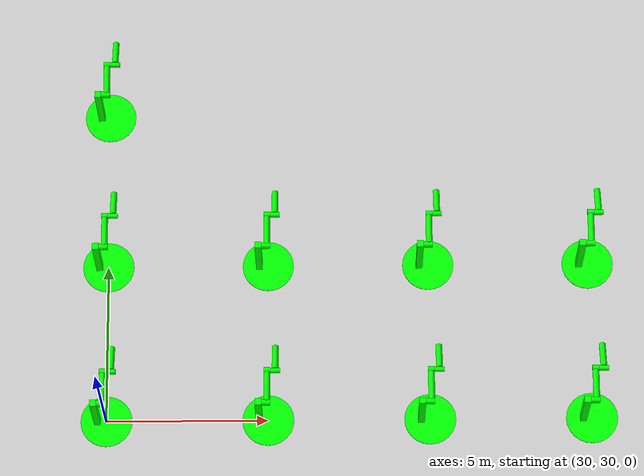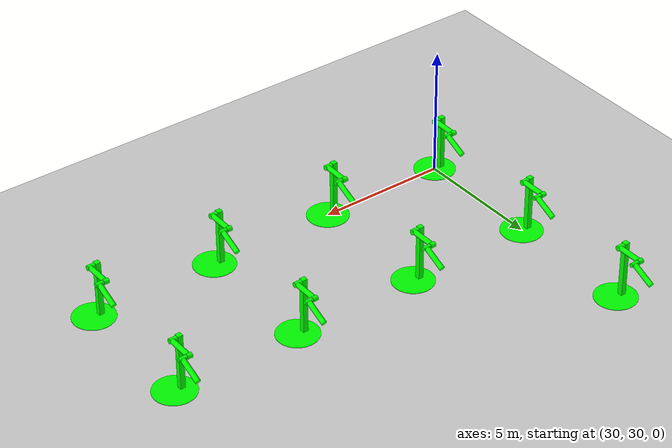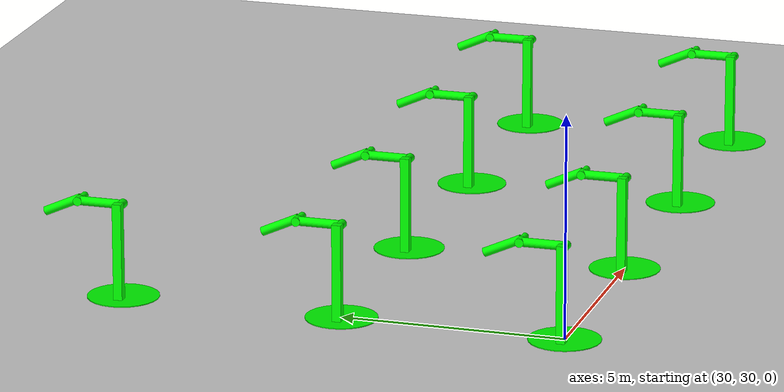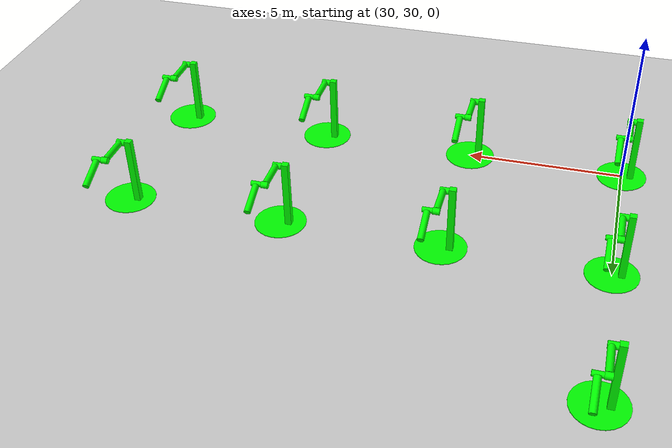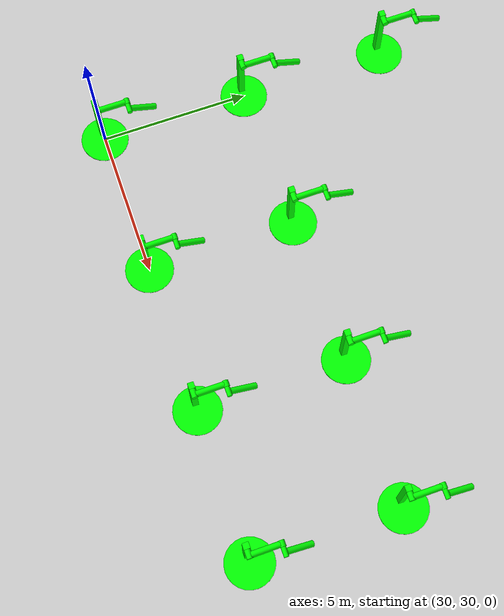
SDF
<sdf version="1.6">
 <world name="double_pendulums">
  <model name="ground_plane">
   <static>true</static>
   <link name="link">
    <collision name="collision">
     <geometry><plane><normal>0 0 1</normal><size>100 100</size></plane></geometry>
    </collision>
    <visual name="visual">
     <geometry><plane><normal>0 0 1</normal><size>100 100</size></plane></geometry>
     <material>
      <ambient>0.8 0.8 0.8 1</ambient>
      <diffuse>0.8 0.8 0.8 1</diffuse>
      <specular>0.8 0.8 0.8 1</specular>
     </material>
    </visual>
   </link>
  </model>
  <model name="dbl_pendulum_166">
   <pose>30 30 0 0 0 0</pose>
   <link name="base">
    <inertial><mass>100</mass></inertial>
    <visual name="vis_plate_on_ground">
     <pose>0 0 0.01 0 0 0</pose>
     <geometry><cylinder><radius>0.8</radius><length>0.02</length></cylinder></geometry>
     <material><ambient>0 1 0 1</ambient><diffuse>0 1 0 1</diffuse><specular>0 1 0 1</specular></material>
    </visual>
    <visual name="vis_pole">
     <pose>-0.275 0 1.1 0 0 0</pose>
     <geometry><box><size>0.2 0.2 2.2</size></box></geometry>
     <material><ambient>0 1 0 1</ambient><diffuse>0 1 0 1</diffuse><specular>0 1 0 1</specular></material>
    </visual>
    <collision name="col_plate_on_ground">
     <pose>0 0 0.01 0 0 0</pose>
     <geometry><cylinder><radius>0.8</radius><length>0.02</length></cylinder></geometry>
    </collision>
    <collision name="col_pole">
     <pose>-0.275 0 1.1 0 0 0</pose>
     <geometry><box><size>0.2 0.2 2.2</size></box></geometry>
    </collision>
   </link>
   <link name="upper_link">
    <pose>0 0 2.1 -1.5708 0 0</pose>
    <inertial><pose>0 0 0.5 0 0 0</pose></inertial>
    <visual name="vis_upper_joint">
     <pose>-0.05 0 0 0 1.5708 0</pose>
     <geometry><cylinder><radius>0.1</radius><length>0.3</length></cylinder></geometry>
     <material><ambient>0 1 0 1</ambient><diffuse>0 1 0 1</diffuse><specular>0 1 0 1</specular></material>
    </visual>
    <visual name="vis_lower_joint">
     <pose>0 0 1.0 0 1.5708 0</pose>
     <geometry><cylinder><radius>0.1</radius><length>0.2</length></cylinder></geometry>
     <material><ambient>0 1 0 1</ambient><diffuse>0 1 0 1</diffuse><specular>0 1 0 1</specular></material>
    </visual>
    <visual name="vis_cylinder">
     <pose>0 0 0.5 0 0 0</pose>
     <geometry><cylinder><radius>0.1</radius><length>0.9</length></cylinder></geometry>
     <material><ambient>0 1 0 1</ambient><diffuse>0 1 0 1</diffuse><specular>0 1 0 1</specular></material>
    </visual>
    <collision name="col_upper_joint">
     <pose>-0.05 0 0 0 1.5708 0</pose>
     <geometry><cylinder><radius>0.1</radius><length>0.3</length></cylinder></geometry>
    </collision>
    <collision name="col_lower_joint">
     <pose>0 0 1.0 0 1.5708 0</pose>
     <geometry><cylinder><radius>0.1</radius><length>0.2</length></cylinder></geometry>
    </collision>
    <collision name="col_cylinder">
     <pose>0 0 0.5 0 0 0</pose>
     <geometry><cylinder><radius>0.1</radius><length>0.9</length></cylinder></geometry>
    </collision>
   </link>
   <link name="lower_link">
    <pose>0.25 1.0 2.1 -2 0 0</pose>
    <inertial><pose>0 0 0.5 0 0 0</pose></inertial>
    <visual name="vis_lower_joint">
     <pose>0 0 0 0 1.5708 0</pose>
     <geometry><cylinder><radius>0.08</radius><length>0.3</length></cylinder></geometry>
     <material><ambient>0 1 0 1</ambient><diffuse>0 1 0 1</diffuse><specular>0 1 0 1</specular></material>
    </visual>
    <visual name="vis_cylinder">
     <pose>0 0 0.5 0 0 0</pose>
     <geometry><cylinder><radius>0.1</radius><length>0.9</length></cylinder></geometry>
     <material><ambient>0 1 0 1</ambient><diffuse>0 1 0 1</diffuse><specular>0 1 0 1</specular></material>
    </visual>
    <collision name="col_lower_joint">
     <pose>0 0 0 0 1.5708 0</pose>
     <geometry><cylinder><radius>0.08</radius><length>0.3</length></cylinder></geometry>
    </collision>
    <collision name="col_cylinder">
     <pose>0 0 0.5 0 0 0</pose>
     <geometry><cylinder><radius>0.1</radius><length>0.9</length></cylinder></geometry>
    </collision>
   </link>
   <joint name="upper_joint" type="revolute">
    <parent>base</parent>
    <child>upper_link</child>
    <axis><xyz>1.0 0 0</xyz></axis>
   </joint>
   <joint name="lower_joint" type="revolute">
    <parent>upper_link</parent>
    <child>lower_link</child>
    <axis><xyz>1.0 0 0</xyz></axis>
   </joint>
  </model>
  <model name="dbl_pendulum_167">
   <pose>35 30 0 0 0 0</pose>
   <link name="base">
    <inertial><mass>100</mass></inertial>
    <visual name="vis_plate_on_ground">
     <pose>0 0 0.01 0 0 0</pose>
     <geometry><cylinder><radius>0.8</radius><length>0.02</length></cylinder></geometry>
     <material><ambient>0 1 0 1</ambient><diffuse>0 1 0 1</diffuse><specular>0 1 0 1</specular></material>
    </visual>
    <visual name="vis_pole">
     <pose>-0.275 0 1.1 0 0 0</pose>
     <geometry><box><size>0.2 0.2 2.2</size></box></geometry>
     <material><ambient>0 1 0 1</ambient><diffuse>0 1 0 1</diffuse><specular>0 1 0 1</specular></material>
    </visual>
    <collision name="col_plate_on_ground">
     <pose>0 0 0.01 0 0 0</pose>
     <geometry><cylinder><radius>0.8</radius><length>0.02</length></cylinder></geometry>
    </collision>
    <collision name="col_pole">
     <pose>-0.275 0 1.1 0 0 0</pose>
     <geometry><box><size>0.2 0.2 2.2</size></box></geometry>
    </collision>
   </link>
   <link name="upper_link">
    <pose>0 0 2.1 -1.5708 0 0</pose>
    <inertial><pose>0 0 0.5 0 0 0</pose></inertial>
    <visual name="vis_upper_joint">
     <pose>-0.05 0 0 0 1.5708 0</pose>
     <geometry><cylinder><radius>0.1</radius><length>0.3</length></cylinder></geometry>
     <material><ambient>0 1 0 1</ambient><diffuse>0 1 0 1</diffuse><specular>0 1 0 1</specular></material>
    </visual>
    <visual name="vis_lower_joint">
     <pose>0 0 1.0 0 1.5708 0</pose>
     <geometry><cylinder><radius>0.1</radius><length>0.2</length></cylinder></geometry>
     <material><ambient>0 1 0 1</ambient><diffuse>0 1 0 1</diffuse><specular>0 1 0 1</specular></material>
    </visual>
    <visual name="vis_cylinder">
     <pose>0 0 0.5 0 0 0</pose>
     <geometry><cylinder><radius>0.1</radius><length>0.9</length></cylinder></geometry>
     <material><ambient>0 1 0 1</ambient><diffuse>0 1 0 1</diffuse><specular>0 1 0 1</specular></material>
    </visual>
    <collision name="col_upper_joint">
     <pose>-0.05 0 0 0 1.5708 0</pose>
     <geometry><cylinder><radius>0.1</radius><length>0.3</length></cylinder></geometry>
    </collision>
    <collision name="col_lower_joint">
     <pose>0 0 1.0 0 1.5708 0</pose>
     <geometry><cylinder><radius>0.1</radius><length>0.2</length></cylinder></geometry>
    </collision>
    <collision name="col_cylinder">
     <pose>0 0 0.5 0 0 0</pose>
     <geometry><cylinder><radius>0.1</radius><length>0.9</length></cylinder></geometry>
    </collision>
   </link>
   <link name="lower_link">
    <pose>0.25 1.0 2.1 -2 0 0</pose>
    <inertial><pose>0 0 0.5 0 0 0</pose></inertial>
    <visual name="vis_lower_joint">
     <pose>0 0 0 0 1.5708 0</pose>
     <geometry><cylinder><radius>0.08</radius><length>0.3</length></cylinder></geometry>
     <material><ambient>0 1 0 1</ambient><diffuse>0 1 0 1</diffuse><specular>0 1 0 1</specular></material>
    </visual>
    <visual name="vis_cylinder">
     <pose>0 0 0.5 0 0 0</pose>
     <geometry><cylinder><radius>0.1</radius><length>0.9</length></cylinder></geometry>
     <material><ambient>0 1 0 1</ambient><diffuse>0 1 0 1</diffuse><specular>0 1 0 1</specular></material>
    </visual>
    <collision name="col_lower_joint">
     <pose>0 0 0 0 1.5708 0</pose>
     <geometry><cylinder><radius>0.08</radius><length>0.3</length></cylinder></geometry>
    </collision>
    <collision name="col_cylinder">
     <pose>0 0 0.5 0 0 0</pose>
     <geometry><cylinder><radius>0.1</radius><length>0.9</length></cylinder></geometry>
    </collision>
   </link>
   <joint name="upper_joint" type="revolute">
    <parent>base</parent>
    <child>upper_link</child>
    <axis><xyz>1.0 0 0</xyz></axis>
   </joint>
   <joint name="lower_joint" type="revolute">
    <parent>upper_link</parent>
    <child>lower_link</child>
    <axis><xyz>1.0 0 0</xyz></axis>
   </joint>
  </model>
  <model name="dbl_pendulum_168">
   <pose>40 30 0 0 0 0</pose>
   <link name="base">
    <inertial><mass>100</mass></inertial>
    <visual name="vis_plate_on_ground">
     <pose>0 0 0.01 0 0 0</pose>
     <geometry><cylinder><radius>0.8</radius><length>0.02</length></cylinder></geometry>
     <material><ambient>0 1 0 1</ambient><diffuse>0 1 0 1</diffuse><specular>0 1 0 1</specular></material>
    </visual>
    <visual name="vis_pole">
     <pose>-0.275 0 1.1 0 0 0</pose>
     <geometry><box><size>0.2 0.2 2.2</size></box></geometry>
     <material><ambient>0 1 0 1</ambient><diffuse>0 1 0 1</diffuse><specular>0 1 0 1</specular></material>
    </visual>
    <collision name="col_plate_on_ground">
     <pose>0 0 0.01 0 0 0</pose>
     <geometry><cylinder><radius>0.8</radius><length>0.02</length></cylinder></geometry>
    </collision>
    <collision name="col_pole">
     <pose>-0.275 0 1.1 0 0 0</pose>
     <geometry><box><size>0.2 0.2 2.2</size></box></geometry>
    </collision>
   </link>
   <link name="upper_link">
    <pose>0 0 2.1 -1.5708 0 0</pose>
    <inertial><pose>0 0 0.5 0 0 0</pose></inertial>
    <visual name="vis_upper_joint">
     <pose>-0.05 0 0 0 1.5708 0</pose>
     <geometry><cylinder><radius>0.1</radius><length>0.3</length></cylinder></geometry>
     <material><ambient>0 1 0 1</ambient><diffuse>0 1 0 1</diffuse><specular>0 1 0 1</specular></material>
    </visual>
    <visual name="vis_lower_joint">
     <pose>0 0 1.0 0 1.5708 0</pose>
     <geometry><cylinder><radius>0.1</radius><length>0.2</length></cylinder></geometry>
     <material><ambient>0 1 0 1</ambient><diffuse>0 1 0 1</diffuse><specular>0 1 0 1</specular></material>
    </visual>
    <visual name="vis_cylinder">
     <pose>0 0 0.5 0 0 0</pose>
     <geometry><cylinder><radius>0.1</radius><length>0.9</length></cylinder></geometry>
     <material><ambient>0 1 0 1</ambient><diffuse>0 1 0 1</diffuse><specular>0 1 0 1</specular></material>
    </visual>
    <collision name="col_upper_joint">
     <pose>-0.05 0 0 0 1.5708 0</pose>
     <geometry><cylinder><radius>0.1</radius><length>0.3</length></cylinder></geometry>
    </collision>
    <collision name="col_lower_joint">
     <pose>0 0 1.0 0 1.5708 0</pose>
     <geometry><cylinder><radius>0.1</radius><length>0.2</length></cylinder></geometry>
    </collision>
    <collision name="col_cylinder">
     <pose>0 0 0.5 0 0 0</pose>
     <geometry><cylinder><radius>0.1</radius><length>0.9</length></cylinder></geometry>
    </collision>
   </link>
   <link name="lower_link">
    <pose>0.25 1.0 2.1 -2 0 0</pose>
    <inertial><pose>0 0 0.5 0 0 0</pose></inertial>
    <visual name="vis_lower_joint">
     <pose>0 0 0 0 1.5708 0</pose>
     <geometry><cylinder><radius>0.08</radius><length>0.3</length></cylinder></geometry>
     <material><ambient>0 1 0 1</ambient><diffuse>0 1 0 1</diffuse><specular>0 1 0 1</specular></material>
    </visual>
    <visual name="vis_cylinder">
     <pose>0 0 0.5 0 0 0</pose>
     <geometry><cylinder><radius>0.1</radius><length>0.9</length></cylinder></geometry>
     <material><ambient>0 1 0 1</ambient><diffuse>0 1 0 1</diffuse><specular>0 1 0 1</specular></material>
    </visual>
    <collision name="col_lower_joint">
     <pose>0 0 0 0 1.5708 0</pose>
     <geometry><cylinder><radius>0.08</radius><length>0.3</length></cylinder></geometry>
    </collision>
    <collision name="col_cylinder">
     <pose>0 0 0.5 0 0 0</pose>
     <geometry><cylinder><radius>0.1</radius><length>0.9</length></cylinder></geometry>
    </collision>
   </link>
   <joint name="upper_joint" type="revolute">
    <parent>base</parent>
    <child>upper_link</child>
    <axis><xyz>1.0 0 0</xyz></axis>
   </joint>
   <joint name="lower_joint" type="revolute">
    <parent>upper_link</parent>
    <child>lower_link</child>
    <axis><xyz>1.0 0 0</xyz></axis>
   </joint>
  </model>
  <model name="dbl_pendulum_169">
   <pose>45 30 0 0 0 0</pose>
   <link name="base">
    <inertial><mass>100</mass></inertial>
    <visual name="vis_plate_on_ground">
     <pose>0 0 0.01 0 0 0</pose>
     <geometry><cylinder><radius>0.8</radius><length>0.02</length></cylinder></geometry>
     <material><ambient>0 1 0 1</ambient><diffuse>0 1 0 1</diffuse><specular>0 1 0 1</specular></material>
    </visual>
    <visual name="vis_pole">
     <pose>-0.275 0 1.1 0 0 0</pose>
     <geometry><box><size>0.2 0.2 2.2</size></box></geometry>
     <material><ambient>0 1 0 1</ambient><diffuse>0 1 0 1</diffuse><specular>0 1 0 1</specular></material>
    </visual>
    <collision name="col_plate_on_ground">
     <pose>0 0 0.01 0 0 0</pose>
     <geometry><cylinder><radius>0.8</radius><length>0.02</length></cylinder></geometry>
    </collision>
    <collision name="col_pole">
     <pose>-0.275 0 1.1 0 0 0</pose>
     <geometry><box><size>0.2 0.2 2.2</size></box></geometry>
    </collision>
   </link>
   <link name="upper_link">
    <pose>0 0 2.1 -1.5708 0 0</pose>
    <inertial><pose>0 0 0.5 0 0 0</pose></inertial>
    <visual name="vis_upper_joint">
     <pose>-0.05 0 0 0 1.5708 0</pose>
     <geometry><cylinder><radius>0.1</radius><length>0.3</length></cylinder></geometry>
     <material><ambient>0 1 0 1</ambient><diffuse>0 1 0 1</diffuse><specular>0 1 0 1</specular></material>
    </visual>
    <visual name="vis_lower_joint">
     <pose>0 0 1.0 0 1.5708 0</pose>
     <geometry><cylinder><radius>0.1</radius><length>0.2</length></cylinder></geometry>
     <material><ambient>0 1 0 1</ambient><diffuse>0 1 0 1</diffuse><specular>0 1 0 1</specular></material>
    </visual>
    <visual name="vis_cylinder">
     <pose>0 0 0.5 0 0 0</pose>
     <geometry><cylinder><radius>0.1</radius><length>0.9</length></cylinder></geometry>
     <material><ambient>0 1 0 1</ambient><diffuse>0 1 0 1</diffuse><specular>0 1 0 1</specular></material>
    </visual>
    <collision name="col_upper_joint">
     <pose>-0.05 0 0 0 1.5708 0</pose>
     <geometry><cylinder><radius>0.1</radius><length>0.3</length></cylinder></geometry>
    </collision>
    <collision name="col_lower_joint">
     <pose>0 0 1.0 0 1.5708 0</pose>
     <geometry><cylinder><radius>0.1</radius><length>0.2</length></cylinder></geometry>
    </collision>
    <collision name="col_cylinder">
     <pose>0 0 0.5 0 0 0</pose>
     <geometry><cylinder><radius>0.1</radius><length>0.9</length></cylinder></geometry>
    </collision>
   </link>
   <link name="lower_link">
    <pose>0.25 1.0 2.1 -2 0 0</pose>
    <inertial><pose>0 0 0.5 0 0 0</pose></inertial>
    <visual name="vis_lower_joint">
     <pose>0 0 0 0 1.5708 0</pose>
     <geometry><cylinder><radius>0.08</radius><length>0.3</length></cylinder></geometry>
     <material><ambient>0 1 0 1</ambient><diffuse>0 1 0 1</diffuse><specular>0 1 0 1</specular></material>
    </visual>
    <visual name="vis_cylinder">
     <pose>0 0 0.5 0 0 0</pose>
     <geometry><cylinder><radius>0.1</radius><length>0.9</length></cylinder></geometry>
     <material><ambient>0 1 0 1</ambient><diffuse>0 1 0 1</diffuse><specular>0 1 0 1</specular></material>
    </visual>
    <collision name="col_lower_joint">
     <pose>0 0 0 0 1.5708 0</pose>
     <geometry><cylinder><radius>0.08</radius><length>0.3</length></cylinder></geometry>
    </collision>
    <collision name="col_cylinder">
     <pose>0 0 0.5 0 0 0</pose>
     <geometry><cylinder><radius>0.1</radius><length>0.9</length></cylinder></geometry>
    </collision>
   </link>
   <joint name="upper_joint" type="revolute">
    <parent>base</parent>
    <child>upper_link</child>
    <axis><xyz>1.0 0 0</xyz></axis>
   </joint>
   <joint name="lower_joint" type="revolute">
    <parent>upper_link</parent>
    <child>lower_link</child>
    <axis><xyz>1.0 0 0</xyz></axis>
   </joint>
  </model>
  <model name="dbl_pendulum_191">
   <pose>30 35 0 0 0 0</pose>
   <link name="base">
    <inertial><mass>100</mass></inertial>
    <visual name="vis_plate_on_ground">
     <pose>0 0 0.01 0 0 0</pose>
     <geometry><cylinder><radius>0.8</radius><length>0.02</length></cylinder></geometry>
     <material><ambient>0 1 0 1</ambient><diffuse>0 1 0 1</diffuse><specular>0 1 0 1</specular></material>
    </visual>
    <visual name="vis_pole">
     <pose>-0.275 0 1.1 0 0 0</pose>
     <geometry><box><size>0.2 0.2 2.2</size></box></geometry>
     <material><ambient>0 1 0 1</ambient><diffuse>0 1 0 1</diffuse><specular>0 1 0 1</specular></material>
    </visual>
    <collision name="col_plate_on_ground">
     <pose>0 0 0.01 0 0 0</pose>
     <geometry><cylinder><radius>0.8</radius><length>0.02</length></cylinder></geometry>
    </collision>
    <collision name="col_pole">
     <pose>-0.275 0 1.1 0 0 0</pose>
     <geometry><box><size>0.2 0.2 2.2</size></box></geometry>
    </collision>
   </link>
   <link name="upper_link">
    <pose>0 0 2.1 -1.5708 0 0</pose>
    <inertial><pose>0 0 0.5 0 0 0</pose></inertial>
    <visual name="vis_upper_joint">
     <pose>-0.05 0 0 0 1.5708 0</pose>
     <geometry><cylinder><radius>0.1</radius><length>0.3</length></cylinder></geometry>
     <material><ambient>0 1 0 1</ambient><diffuse>0 1 0 1</diffuse><specular>0 1 0 1</specular></material>
    </visual>
    <visual name="vis_lower_joint">
     <pose>0 0 1.0 0 1.5708 0</pose>
     <geometry><cylinder><radius>0.1</radius><length>0.2</length></cylinder></geometry>
     <material><ambient>0 1 0 1</ambient><diffuse>0 1 0 1</diffuse><specular>0 1 0 1</specular></material>
    </visual>
    <visual name="vis_cylinder">
     <pose>0 0 0.5 0 0 0</pose>
     <geometry><cylinder><radius>0.1</radius><length>0.9</length></cylinder></geometry>
     <material><ambient>0 1 0 1</ambient><diffuse>0 1 0 1</diffuse><specular>0 1 0 1</specular></material>
    </visual>
    <collision name="col_upper_joint">
     <pose>-0.05 0 0 0 1.5708 0</pose>
     <geometry><cylinder><radius>0.1</radius><length>0.3</length></cylinder></geometry>
    </collision>
    <collision name="col_lower_joint">
     <pose>0 0 1.0 0 1.5708 0</pose>
     <geometry><cylinder><radius>0.1</radius><length>0.2</length></cylinder></geometry>
    </collision>
    <collision name="col_cylinder">
     <pose>0 0 0.5 0 0 0</pose>
     <geometry><cylinder><radius>0.1</radius><length>0.9</length></cylinder></geometry>
    </collision>
   </link>
   <link name="lower_link">
    <pose>0.25 1.0 2.1 -2 0 0</pose>
    <inertial><pose>0 0 0.5 0 0 0</pose></inertial>
    <visual name="vis_lower_joint">
     <pose>0 0 0 0 1.5708 0</pose>
     <geometry><cylinder><radius>0.08</radius><length>0.3</length></cylinder></geometry>
     <material><ambient>0 1 0 1</ambient><diffuse>0 1 0 1</diffuse><specular>0 1 0 1</specular></material>
    </visual>
    <visual name="vis_cylinder">
     <pose>0 0 0.5 0 0 0</pose>
     <geometry><cylinder><radius>0.1</radius><length>0.9</length></cylinder></geometry>
     <material><ambient>0 1 0 1</ambient><diffuse>0 1 0 1</diffuse><specular>0 1 0 1</specular></material>
    </visual>
    <collision name="col_lower_joint">
     <pose>0 0 0 0 1.5708 0</pose>
     <geometry><cylinder><radius>0.08</radius><length>0.3</length></cylinder></geometry>
    </collision>
    <collision name="col_cylinder">
     <pose>0 0 0.5 0 0 0</pose>
     <geometry><cylinder><radius>0.1</radius><length>0.9</length></cylinder></geometry>
    </collision>
   </link>
   <joint name="upper_joint" type="revolute">
    <parent>base</parent>
    <child>upper_link</child>
    <axis><xyz>1.0 0 0</xyz></axis>
   </joint>
   <joint name="lower_joint" type="revolute">
    <parent>upper_link</parent>
    <child>lower_link</child>
    <axis><xyz>1.0 0 0</xyz></axis>
   </joint>
  </model>
  <model name="dbl_pendulum_192">
   <pose>35 35 0 0 0 0</pose>
   <link name="base">
    <inertial><mass>100</mass></inertial>
    <visual name="vis_plate_on_ground">
     <pose>0 0 0.01 0 0 0</pose>
     <geometry><cylinder><radius>0.8</radius><length>0.02</length></cylinder></geometry>
     <material><ambient>0 1 0 1</ambient><diffuse>0 1 0 1</diffuse><specular>0 1 0 1</specular></material>
    </visual>
    <visual name="vis_pole">
     <pose>-0.275 0 1.1 0 0 0</pose>
     <geometry><box><size>0.2 0.2 2.2</size></box></geometry>
     <material><ambient>0 1 0 1</ambient><diffuse>0 1 0 1</diffuse><specular>0 1 0 1</specular></material>
    </visual>
    <collision name="col_plate_on_ground">
     <pose>0 0 0.01 0 0 0</pose>
     <geometry><cylinder><radius>0.8</radius><length>0.02</length></cylinder></geometry>
    </collision>
    <collision name="col_pole">
     <pose>-0.275 0 1.1 0 0 0</pose>
     <geometry><box><size>0.2 0.2 2.2</size></box></geometry>
    </collision>
   </link>
   <link name="upper_link">
    <pose>0 0 2.1 -1.5708 0 0</pose>
    <inertial><pose>0 0 0.5 0 0 0</pose></inertial>
    <visual name="vis_upper_joint">
     <pose>-0.05 0 0 0 1.5708 0</pose>
     <geometry><cylinder><radius>0.1</radius><length>0.3</length></cylinder></geometry>
     <material><ambient>0 1 0 1</ambient><diffuse>0 1 0 1</diffuse><specular>0 1 0 1</specular></material>
    </visual>
    <visual name="vis_lower_joint">
     <pose>0 0 1.0 0 1.5708 0</pose>
     <geometry><cylinder><radius>0.1</radius><length>0.2</length></cylinder></geometry>
     <material><ambient>0 1 0 1</ambient><diffuse>0 1 0 1</diffuse><specular>0 1 0 1</specular></material>
    </visual>
    <visual name="vis_cylinder">
     <pose>0 0 0.5 0 0 0</pose>
     <geometry><cylinder><radius>0.1</radius><length>0.9</length></cylinder></geometry>
     <material><ambient>0 1 0 1</ambient><diffuse>0 1 0 1</diffuse><specular>0 1 0 1</specular></material>
    </visual>
    <collision name="col_upper_joint">
     <pose>-0.05 0 0 0 1.5708 0</pose>
     <geometry><cylinder><radius>0.1</radius><length>0.3</length></cylinder></geometry>
    </collision>
    <collision name="col_lower_joint">
     <pose>0 0 1.0 0 1.5708 0</pose>
     <geometry><cylinder><radius>0.1</radius><length>0.2</length></cylinder></geometry>
    </collision>
    <collision name="col_cylinder">
     <pose>0 0 0.5 0 0 0</pose>
     <geometry><cylinder><radius>0.1</radius><length>0.9</length></cylinder></geometry>
    </collision>
   </link>
   <link name="lower_link">
    <pose>0.25 1.0 2.1 -2 0 0</pose>
    <inertial><pose>0 0 0.5 0 0 0</pose></inertial>
    <visual name="vis_lower_joint">
     <pose>0 0 0 0 1.5708 0</pose>
     <geometry><cylinder><radius>0.08</radius><length>0.3</length></cylinder></geometry>
     <material><ambient>0 1 0 1</ambient><diffuse>0 1 0 1</diffuse><specular>0 1 0 1</specular></material>
    </visual>
    <visual name="vis_cylinder">
     <pose>0 0 0.5 0 0 0</pose>
     <geometry><cylinder><radius>0.1</radius><length>0.9</length></cylinder></geometry>
     <material><ambient>0 1 0 1</ambient><diffuse>0 1 0 1</diffuse><specular>0 1 0 1</specular></material>
    </visual>
    <collision name="col_lower_joint">
     <pose>0 0 0 0 1.5708 0</pose>
     <geometry><cylinder><radius>0.08</radius><length>0.3</length></cylinder></geometry>
    </collision>
    <collision name="col_cylinder">
     <pose>0 0 0.5 0 0 0</pose>
     <geometry><cylinder><radius>0.1</radius><length>0.9</length></cylinder></geometry>
    </collision>
   </link>
   <joint name="upper_joint" type="revolute">
    <parent>base</parent>
    <child>upper_link</child>
    <axis><xyz>1.0 0 0</xyz></axis>
   </joint>
   <joint name="lower_joint" type="revolute">
    <parent>upper_link</parent>
    <child>lower_link</child>
    <axis><xyz>1.0 0 0</xyz></axis>
   </joint>
  </model>
  <model name="dbl_pendulum_193">
   <pose>40 35 0 0 0 0</pose>
   <link name="base">
    <inertial><mass>100</mass></inertial>
    <visual name="vis_plate_on_ground">
     <pose>0 0 0.01 0 0 0</pose>
     <geometry><cylinder><radius>0.8</radius><length>0.02</length></cylinder></geometry>
     <material><ambient>0 1 0 1</ambient><diffuse>0 1 0 1</diffuse><specular>0 1 0 1</specular></material>
    </visual>
    <visual name="vis_pole">
     <pose>-0.275 0 1.1 0 0 0</pose>
     <geometry><box><size>0.2 0.2 2.2</size></box></geometry>
     <material><ambient>0 1 0 1</ambient><diffuse>0 1 0 1</diffuse><specular>0 1 0 1</specular></material>
    </visual>
    <collision name="col_plate_on_ground">
     <pose>0 0 0.01 0 0 0</pose>
     <geometry><cylinder><radius>0.8</radius><length>0.02</length></cylinder></geometry>
    </collision>
    <collision name="col_pole">
     <pose>-0.275 0 1.1 0 0 0</pose>
     <geometry><box><size>0.2 0.2 2.2</size></box></geometry>
    </collision>
   </link>
   <link name="upper_link">
    <pose>0 0 2.1 -1.5708 0 0</pose>
    <inertial><pose>0 0 0.5 0 0 0</pose></inertial>
    <visual name="vis_upper_joint">
     <pose>-0.05 0 0 0 1.5708 0</pose>
     <geometry><cylinder><radius>0.1</radius><length>0.3</length></cylinder></geometry>
     <material><ambient>0 1 0 1</ambient><diffuse>0 1 0 1</diffuse><specular>0 1 0 1</specular></material>
    </visual>
    <visual name="vis_lower_joint">
     <pose>0 0 1.0 0 1.5708 0</pose>
     <geometry><cylinder><radius>0.1</radius><length>0.2</length></cylinder></geometry>
     <material><ambient>0 1 0 1</ambient><diffuse>0 1 0 1</diffuse><specular>0 1 0 1</specular></material>
    </visual>
    <visual name="vis_cylinder">
     <pose>0 0 0.5 0 0 0</pose>
     <geometry><cylinder><radius>0.1</radius><length>0.9</length></cylinder></geometry>
     <material><ambient>0 1 0 1</ambient><diffuse>0 1 0 1</diffuse><specular>0 1 0 1</specular></material>
    </visual>
    <collision name="col_upper_joint">
     <pose>-0.05 0 0 0 1.5708 0</pose>
     <geometry><cylinder><radius>0.1</radius><length>0.3</length></cylinder></geometry>
    </collision>
    <collision name="col_lower_joint">
     <pose>0 0 1.0 0 1.5708 0</pose>
     <geometry><cylinder><radius>0.1</radius><length>0.2</length></cylinder></geometry>
    </collision>
    <collision name="col_cylinder">
     <pose>0 0 0.5 0 0 0</pose>
     <geometry><cylinder><radius>0.1</radius><length>0.9</length></cylinder></geometry>
    </collision>
   </link>
   <link name="lower_link">
    <pose>0.25 1.0 2.1 -2 0 0</pose>
    <inertial><pose>0 0 0.5 0 0 0</pose></inertial>
    <visual name="vis_lower_joint">
     <pose>0 0 0 0 1.5708 0</pose>
     <geometry><cylinder><radius>0.08</radius><length>0.3</length></cylinder></geometry>
     <material><ambient>0 1 0 1</ambient><diffuse>0 1 0 1</diffuse><specular>0 1 0 1</specular></material>
    </visual>
    <visual name="vis_cylinder">
     <pose>0 0 0.5 0 0 0</pose>
     <geometry><cylinder><radius>0.1</radius><length>0.9</length></cylinder></geometry>
     <material><ambient>0 1 0 1</ambient><diffuse>0 1 0 1</diffuse><specular>0 1 0 1</specular></material>
    </visual>
    <collision name="col_lower_joint">
     <pose>0 0 0 0 1.5708 0</pose>
     <geometry><cylinder><radius>0.08</radius><length>0.3</length></cylinder></geometry>
    </collision>
    <collision name="col_cylinder">
     <pose>0 0 0.5 0 0 0</pose>
     <geometry><cylinder><radius>0.1</radius><length>0.9</length></cylinder></geometry>
    </collision>
   </link>
   <joint name="upper_joint" type="revolute">
    <parent>base</parent>
    <child>upper_link</child>
    <axis><xyz>1.0 0 0</xyz></axis>
   </joint>
   <joint name="lower_joint" type="revolute">
    <parent>upper_link</parent>
    <child>lower_link</child>
    <axis><xyz>1.0 0 0</xyz></axis>
   </joint>
  </model>
  <model name="dbl_pendulum_194">
   <pose>45 35 0 0 0 0</pose>
   <link name="base">
    <inertial><mass>100</mass></inertial>
    <visual name="vis_plate_on_ground">
     <pose>0 0 0.01 0 0 0</pose>
     <geometry><cylinder><radius>0.8</radius><length>0.02</length></cylinder></geometry>
     <material><ambient>0 1 0 1</ambient><diffuse>0 1 0 1</diffuse><specular>0 1 0 1</specular></material>
    </visual>
    <visual name="vis_pole">
     <pose>-0.275 0 1.1 0 0 0</pose>
     <geometry><box><size>0.2 0.2 2.2</size></box></geometry>
     <material><ambient>0 1 0 1</ambient><diffuse>0 1 0 1</diffuse><specular>0 1 0 1</specular></material>
    </visual>
    <collision name="col_plate_on_ground">
     <pose>0 0 0.01 0 0 0</pose>
     <geometry><cylinder><radius>0.8</radius><length>0.02</length></cylinder></geometry>
    </collision>
    <collision name="col_pole">
     <pose>-0.275 0 1.1 0 0 0</pose>
     <geometry><box><size>0.2 0.2 2.2</size></box></geometry>
    </collision>
   </link>
   <link name="upper_link">
    <pose>0 0 2.1 -1.5708 0 0</pose>
    <inertial><pose>0 0 0.5 0 0 0</pose></inertial>
    <visual name="vis_upper_joint">
     <pose>-0.05 0 0 0 1.5708 0</pose>
     <geometry><cylinder><radius>0.1</radius><length>0.3</length></cylinder></geometry>
     <material><ambient>0 1 0 1</ambient><diffuse>0 1 0 1</diffuse><specular>0 1 0 1</specular></material>
    </visual>
    <visual name="vis_lower_joint">
     <pose>0 0 1.0 0 1.5708 0</pose>
     <geometry><cylinder><radius>0.1</radius><length>0.2</length></cylinder></geometry>
     <material><ambient>0 1 0 1</ambient><diffuse>0 1 0 1</diffuse><specular>0 1 0 1</specular></material>
    </visual>
    <visual name="vis_cylinder">
     <pose>0 0 0.5 0 0 0</pose>
     <geometry><cylinder><radius>0.1</radius><length>0.9</length></cylinder></geometry>
     <material><ambient>0 1 0 1</ambient><diffuse>0 1 0 1</diffuse><specular>0 1 0 1</specular></material>
    </visual>
    <collision name="col_upper_joint">
     <pose>-0.05 0 0 0 1.5708 0</pose>
     <geometry><cylinder><radius>0.1</radius><length>0.3</length></cylinder></geometry>
    </collision>
    <collision name="col_lower_joint">
     <pose>0 0 1.0 0 1.5708 0</pose>
     <geometry><cylinder><radius>0.1</radius><length>0.2</length></cylinder></geometry>
    </collision>
    <collision name="col_cylinder">
     <pose>0 0 0.5 0 0 0</pose>
     <geometry><cylinder><radius>0.1</radius><length>0.9</length></cylinder></geometry>
    </collision>
   </link>
   <link name="lower_link">
    <pose>0.25 1.0 2.1 -2 0 0</pose>
    <inertial><pose>0 0 0.5 0 0 0</pose></inertial>
    <visual name="vis_lower_joint">
     <pose>0 0 0 0 1.5708 0</pose>
     <geometry><cylinder><radius>0.08</radius><length>0.3</length></cylinder></geometry>
     <material><ambient>0 1 0 1</ambient><diffuse>0 1 0 1</diffuse><specular>0 1 0 1</specular></material>
    </visual>
    <visual name="vis_cylinder">
     <pose>0 0 0.5 0 0 0</pose>
     <geometry><cylinder><radius>0.1</radius><length>0.9</length></cylinder></geometry>
     <material><ambient>0 1 0 1</ambient><diffuse>0 1 0 1</diffuse><specular>0 1 0 1</specular></material>
    </visual>
    <collision name="col_lower_joint">
     <pose>0 0 0 0 1.5708 0</pose>
     <geometry><cylinder><radius>0.08</radius><length>0.3</length></cylinder></geometry>
    </collision>
    <collision name="col_cylinder">
     <pose>0 0 0.5 0 0 0</pose>
     <geometry><cylinder><radius>0.1</radius><length>0.9</length></cylinder></geometry>
    </collision>
   </link>
   <joint name="upper_joint" type="revolute">
    <parent>base</parent>
    <child>upper_link</child>
    <axis><xyz>1.0 0 0</xyz></axis>
   </joint>
   <joint name="lower_joint" type="revolute">
    <parent>upper_link</parent>
    <child>lower_link</child>
    <axis><xyz>1.0 0 0</xyz></axis>
   </joint>
  </model>
  <model name="dbl_pendulum_216">
   <pose>30 40 0 0 0 0</pose>
   <link name="base">
    <inertial><mass>100</mass></inertial>
    <visual name="vis_plate_on_ground">
     <pose>0 0 0.01 0 0 0</pose>
     <geometry><cylinder><radius>0.8</radius><length>0.02</length></cylinder></geometry>
     <material><ambient>0 1 0 1</ambient><diffuse>0 1 0 1</diffuse><specular>0 1 0 1</specular></material>
    </visual>
    <visual name="vis_pole">
     <pose>-0.275 0 1.1 0 0 0</pose>
     <geometry><box><size>0.2 0.2 2.2</size></box></geometry>
     <material><ambient>0 1 0 1</ambient><diffuse>0 1 0 1</diffuse><specular>0 1 0 1</specular></material>
    </visual>
    <collision name="col_plate_on_ground">
     <pose>0 0 0.01 0 0 0</pose>
     <geometry><cylinder><radius>0.8</radius><length>0.02</length></cylinder></geometry>
    </collision>
    <collision name="col_pole">
     <pose>-0.275 0 1.1 0 0 0</pose>
     <geometry><box><size>0.2 0.2 2.2</size></box></geometry>
    </collision>
   </link>
   <link name="upper_link">
    <pose>0 0 2.1 -1.5708 0 0</pose>
    <inertial><pose>0 0 0.5 0 0 0</pose></inertial>
    <visual name="vis_upper_joint">
     <pose>-0.05 0 0 0 1.5708 0</pose>
     <geometry><cylinder><radius>0.1</radius><length>0.3</length></cylinder></geometry>
     <material><ambient>0 1 0 1</ambient><diffuse>0 1 0 1</diffuse><specular>0 1 0 1</specular></material>
    </visual>
    <visual name="vis_lower_joint">
     <pose>0 0 1.0 0 1.5708 0</pose>
     <geometry><cylinder><radius>0.1</radius><length>0.2</length></cylinder></geometry>
     <material><ambient>0 1 0 1</ambient><diffuse>0 1 0 1</diffuse><specular>0 1 0 1</specular></material>
    </visual>
    <visual name="vis_cylinder">
     <pose>0 0 0.5 0 0 0</pose>
     <geometry><cylinder><radius>0.1</radius><length>0.9</length></cylinder></geometry>
     <material><ambient>0 1 0 1</ambient><diffuse>0 1 0 1</diffuse><specular>0 1 0 1</specular></material>
    </visual>
    <collision name="col_upper_joint">
     <pose>-0.05 0 0 0 1.5708 0</pose>
     <geometry><cylinder><radius>0.1</radius><length>0.3</length></cylinder></geometry>
    </collision>
    <collision name="col_lower_joint">
     <pose>0 0 1.0 0 1.5708 0</pose>
     <geometry><cylinder><radius>0.1</radius><length>0.2</length></cylinder></geometry>
    </collision>
    <collision name="col_cylinder">
     <pose>0 0 0.5 0 0 0</pose>
     <geometry><cylinder><radius>0.1</radius><length>0.9</length></cylinder></geometry>
    </collision>
   </link>
   <link name="lower_link">
    <pose>0.25 1.0 2.1 -2 0 0</pose>
    <inertial><pose>0 0 0.5 0 0 0</pose></inertial>
    <visual name="vis_lower_joint">
     <pose>0 0 0 0 1.5708 0</pose>
     <geometry><cylinder><radius>0.08</radius><length>0.3</length></cylinder></geometry>
     <material><ambient>0 1 0 1</ambient><diffuse>0 1 0 1</diffuse><specular>0 1 0 1</specular></material>
    </visual>
    <visual name="vis_cylinder">
     <pose>0 0 0.5 0 0 0</pose>
     <geometry><cylinder><radius>0.1</radius><length>0.9</length></cylinder></geometry>
     <material><ambient>0 1 0 1</ambient><diffuse>0 1 0 1</diffuse><specular>0 1 0 1</specular></material>
    </visual>
    <collision name="col_lower_joint">
     <pose>0 0 0 0 1.5708 0</pose>
     <geometry><cylinder><radius>0.08</radius><length>0.3</length></cylinder></geometry>
    </collision>
    <collision name="col_cylinder">
     <pose>0 0 0.5 0 0 0</pose>
     <geometry><cylinder><radius>0.1</radius><length>0.9</length></cylinder></geometry>
    </collision>
   </link>
   <joint name="upper_joint" type="revolute">
    <parent>base</parent>
    <child>upper_link</child>
    <axis><xyz>1.0 0 0</xyz></axis>
   </joint>
   <joint name="lower_joint" type="revolute">
    <parent>upper_link</parent>
    <child>lower_link</child>
    <axis><xyz>1.0 0 0</xyz></axis>
   </joint>
  </model>
 </world>
</sdf>
